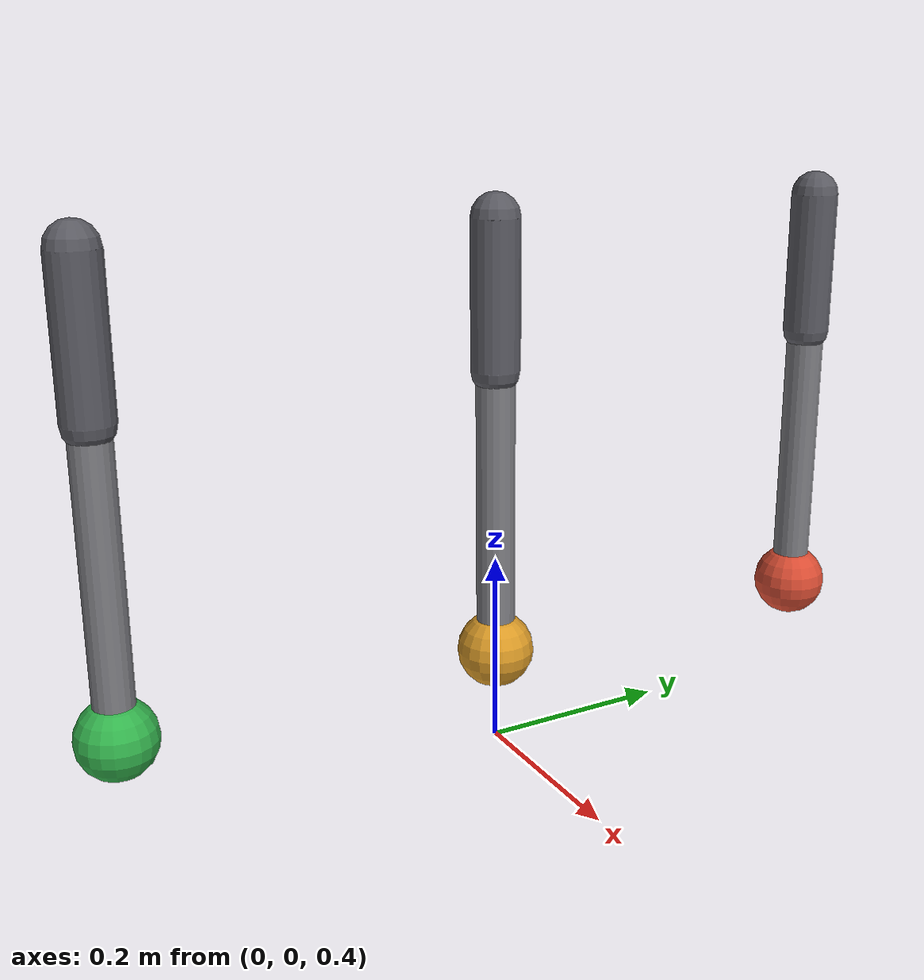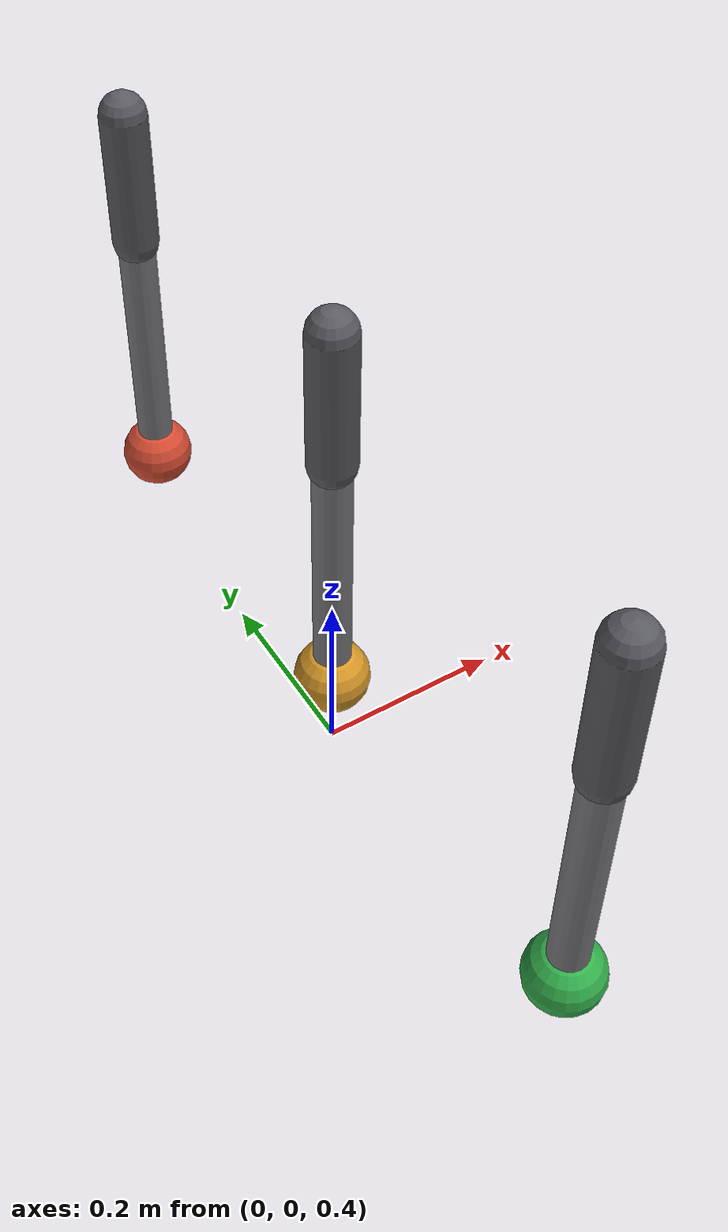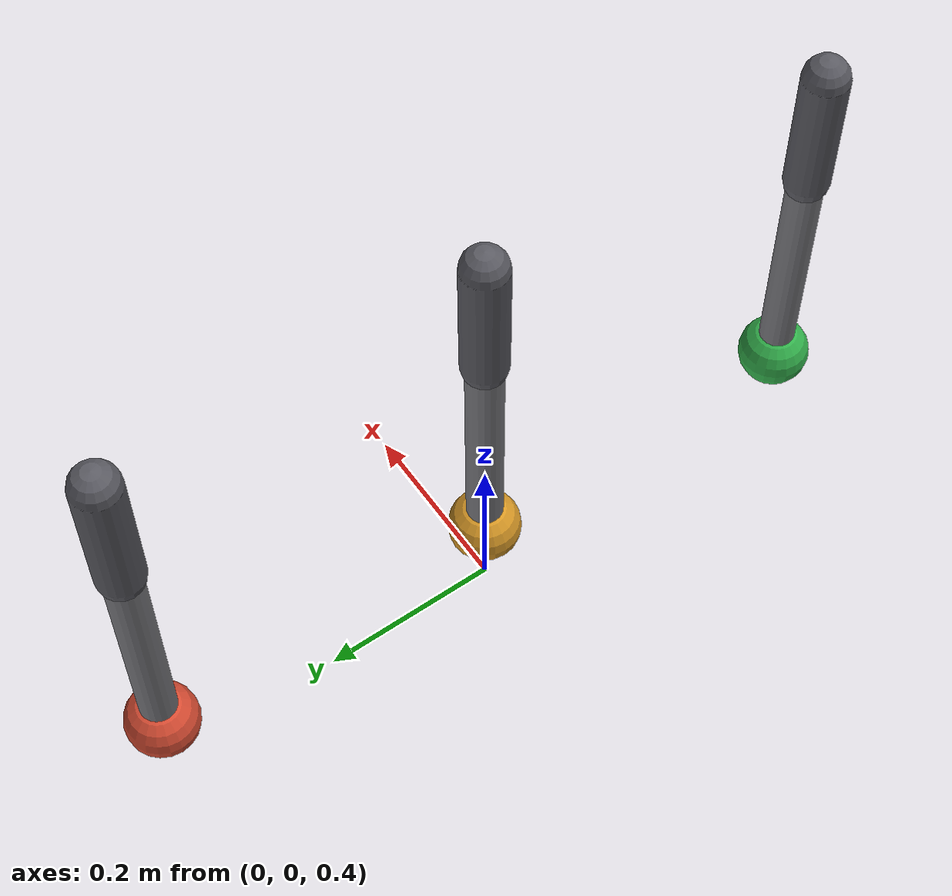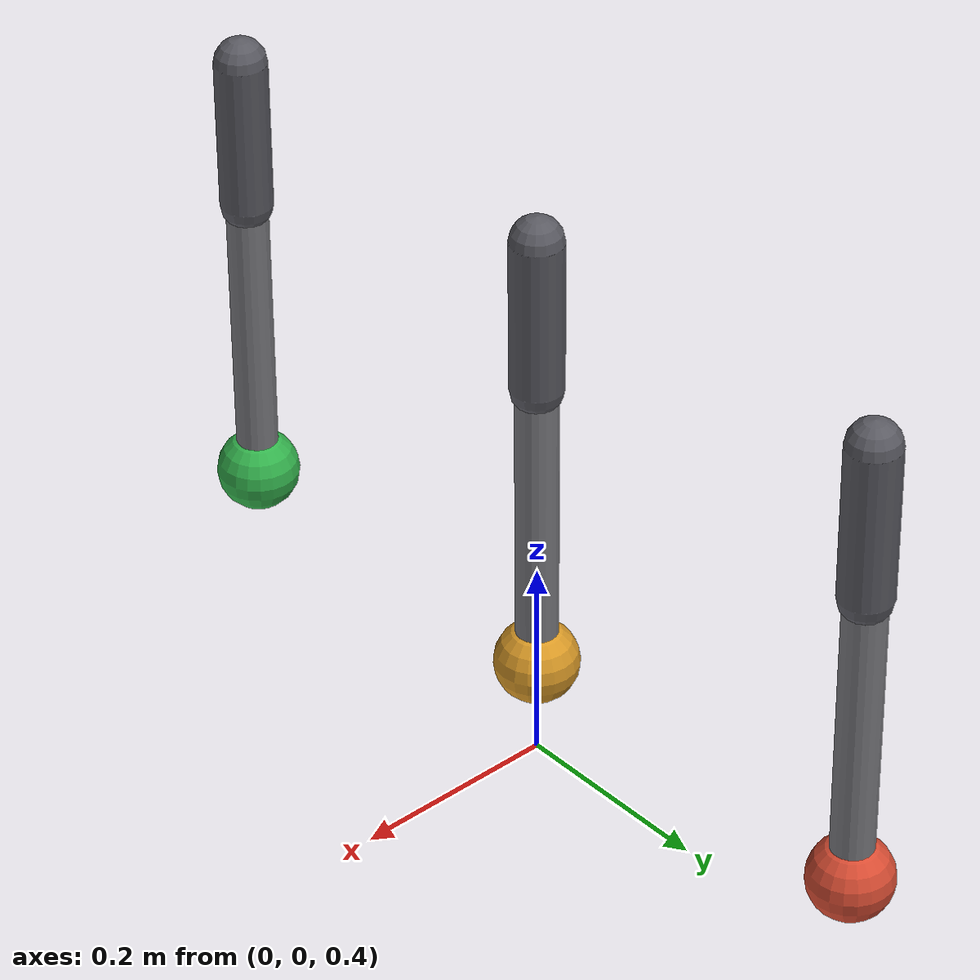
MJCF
<mujoco model="activation-dynamics">
  <compiler angle="radian"/>
  <option gravity="0 0 -9.81" timestep="0.001" integrator="RK4">
    <flag energy="enable"/>
  </option>

  <default>
    <geom contype="0" conaffinity="0"/>
  </default>

  <worldbody>
    <!-- Fast (left) -->
    <body name="upper_fast" pos="0 -0.4 0.8">
      <geom name="upper_fast" type="capsule" size="0.025"
            fromto="0 0 0.15  0 0 0" rgba="0.35 0.35 0.38 1"/>
      <body name="forearm_fast" pos="0 0 0">
        <joint name="elbow_fast" type="hinge" axis="0 1 0"
               range="-1.57 1.57" limited="true" damping="0.3"/>
        <inertial pos="0 0 -0.15" mass="1.0"
                  diaginertia="0.015 0.015 0.001"/>
        <geom name="rod_fast" type="capsule" size="0.02"
              fromto="0 0 0  0 0 -0.3" rgba="0.48 0.48 0.50 1"/>
        <geom name="tip_fast" type="sphere" size="0.04"
              pos="0 0 -0.3" rgba="0.2 0.7 0.3 1"/>
      </body>
    </body>

    <!-- Medium (center) -->
    <body name="upper_med" pos="0 0 0.8">
      <geom name="upper_med" type="capsule" size="0.025"
            fromto="0 0 0.15  0 0 0" rgba="0.35 0.35 0.38 1"/>
      <body name="forearm_med" pos="0 0 0">
        <joint name="elbow_med" type="hinge" axis="0 1 0"
               range="-1.57 1.57" limited="true" damping="0.3"/>
        <inertial pos="0 0 -0.15" mass="1.0"
                  diaginertia="0.015 0.015 0.001"/>
        <geom name="rod_med" type="capsule" size="0.02"
              fromto="0 0 0  0 0 -0.3" rgba="0.48 0.48 0.50 1"/>
        <geom name="tip_med" type="sphere" size="0.04"
              pos="0 0 -0.3" rgba="0.85 0.6 0.15 1"/>
      </body>
    </body>

    <!-- Slow (right) -->
    <body name="upper_slow" pos="0 0.4 0.8">
      <geom name="upper_slow" type="capsule" size="0.025"
            fromto="0 0 0.15  0 0 0" rgba="0.35 0.35 0.38 1"/>
      <body name="forearm_slow" pos="0 0 0">
        <joint name="elbow_slow" type="hinge" axis="0 1 0"
               range="-1.57 1.57" limited="true" damping="0.3"/>
        <inertial pos="0 0 -0.15" mass="1.0"
                  diaginertia="0.015 0.015 0.001"/>
        <geom name="rod_slow" type="capsule" size="0.02"
              fromto="0 0 0  0 0 -0.3" rgba="0.48 0.48 0.50 1"/>
        <geom name="tip_slow" type="sphere" size="0.04"
              pos="0 0 -0.3" rgba="0.85 0.3 0.2 1"/>
      </body>
    </body>
  </worldbody>

  <actuator>
    <muscle name="fast" joint="elbow_fast"
            scale="200" range="0.75 1.05"
            lmin="0.5" lmax="1.6" vmax="1.0"
            fpmax="0.3" fvmax="1.4"
            timeconst="0.005 0.02"/>
    <muscle name="medium" joint="elbow_med"
            scale="200" range="0.75 1.05"
            lmin="0.5" lmax="1.6" vmax="1.0"
            fpmax="0.3" fvmax="1.4"
            timeconst="0.01 0.04"/>
    <muscle name="slow" joint="elbow_slow"
            scale="200" range="0.75 1.05"
            lmin="0.5" lmax="1.6" vmax="1.0"
            fpmax="0.3" fvmax="1.4"
            timeconst="0.05 0.20"/>
  </actuator>

  <sensor>
    <jointpos name="jpos_fast" joint="elbow_fast"/>
    <jointpos name="jpos_med" joint="elbow_med"/>
    <jointpos name="jpos_slow" joint="elbow_slow"/>
  </sensor>
</mujoco>
